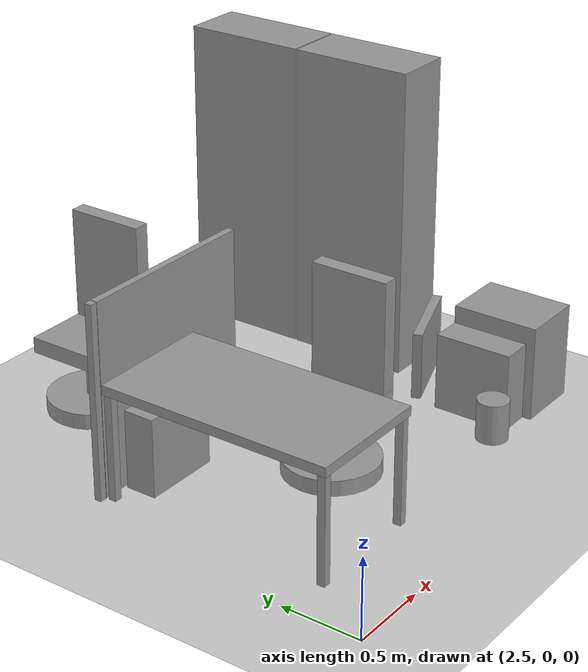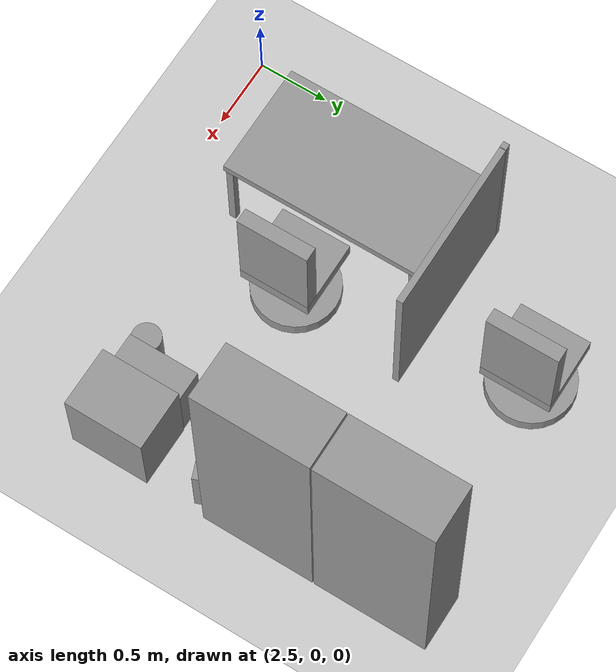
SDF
<sdf version="1.6">
 <world name="default">
  <model name="ground_plane">
   <static>1</static>
   <link name="link">
    <collision name="collision">
     <geometry><plane><normal>0 0 1</normal><size>100 100</size></plane></geometry>
     <surface><friction><ode><mu>100</mu><mu2>50</mu2></ode></friction></surface>
    </collision>
    <visual name="visual">
     <cast_shadows>0</cast_shadows>
     <geometry><plane><normal>0 0 1</normal><size>100 100</size></plane></geometry>
     <material>
      <script><uri>file://media/materials/scripts/gazebo.material</uri><name>Gazebo/Grey</name></script>
     </material>
    </visual>
   </link>
  </model>
  <model name="L8401_cabinet_1_clone">
   <link name="link">
    <inertial>
     <mass>1</mass>
     <inertia>
      <ixx>0.166667</ixx>
      <ixy>0</ixy>
      <ixz>0</ixz>
      <iyy>0.166667</iyy>
      <iyz>0</iyz>
      <izz>0.166667</izz>
     </inertia>
    </inertial>
    <visual name="visual">
     <geometry><box><size>0.39 0.8 2</size></box></geometry>
     <material>
      <script><name>Gazebo/Grey</name><uri>file://media/materials/scripts/gazebo.material</uri></script>
      <ambient>0.3 0.3 0.3 1</ambient>
      <diffuse>0.7 0.7 0.7 1</diffuse>
      <specular>0.01 0.01 0.01 1</specular>
      <emissive>0 0 0 1</emissive>
      <shader type="vertex"><normal_map>__default__</normal_map></shader>
     </material>
    </visual>
    <collision name="collision">
     <geometry><box><size>0.39 0.8 2</size></box></geometry>
     <surface>
      <friction>
       <ode><mu>1</mu><mu2>1</mu2><fdir1>0 0 0</fdir1><slip1>0</slip1><slip2>0</slip2></ode>
       <torsional>
        <coefficient>1</coefficient>
        <patch_radius>0</patch_radius>
        <surface_radius>0</surface_radius>
        <use_patch_radius>1</use_patch_radius>
        <ode><slip>0</slip></ode>
       </torsional>
      </friction>
      <bounce><restitution_coefficient>0</restitution_coefficient><threshold>1e+06</threshold></bounce>
      <contact>
       <collide_without_contact>0</collide_without_contact>
       <collide_without_contact_bitmask>1</collide_without_contact_bitmask>
       <collide_bitmask>1</collide_bitmask>
       <ode>
        <soft_cfm>0</soft_cfm>
        <soft_erp>0.2</soft_erp>
        <kp>1e+13</kp>
        <kd>1</kd>
        <max_vel>0.01</max_vel>
        <min_depth>0</min_depth>
       </ode>
       <bullet>
        <split_impulse>1</split_impulse>
        <split_impulse_penetration_threshold>-0.01</split_impulse_penetration_threshold>
        <soft_cfm>0</soft_cfm>
        <soft_erp>0.2</soft_erp>
        <kp>1e+13</kp>
        <kd>1</kd>
       </bullet>
      </contact>
     </surface>
    </collision>
   </link>
   <static>1</static>
   <pose>5.18824 2.62085 0.999999 3e-06 -0 0.00016</pose>
  </model>
  <model name="L8401_cabinet_1_clone_0">
   <link name="link">
    <inertial>
     <mass>1</mass>
     <inertia>
      <ixx>0.166667</ixx>
      <ixy>0</ixy>
      <ixz>0</ixz>
      <iyy>0.166667</iyy>
      <iyz>0</iyz>
      <izz>0.166667</izz>
     </inertia>
    </inertial>
    <visual name="visual">
     <geometry><box><size>0.39 0.8 2</size></box></geometry>
     <material>
      <script><name>Gazebo/Grey</name><uri>file://media/materials/scripts/gazebo.material</uri></script>
      <ambient>0.3 0.3 0.3 1</ambient>
      <diffuse>0.7 0.7 0.7 1</diffuse>
      <specular>0.01 0.01 0.01 1</specular>
      <emissive>0 0 0 1</emissive>
      <shader type="vertex"><normal_map>__default__</normal_map></shader>
     </material>
    </visual>
    <collision name="collision">
     <geometry><box><size>0.39 0.8 2</size></box></geometry>
     <surface>
      <friction>
       <ode><mu>1</mu><mu2>1</mu2><fdir1>0 0 0</fdir1><slip1>0</slip1><slip2>0</slip2></ode>
       <torsional>
        <coefficient>1</coefficient>
        <patch_radius>0</patch_radius>
        <surface_radius>0</surface_radius>
        <use_patch_radius>1</use_patch_radius>
        <ode><slip>0</slip></ode>
       </torsional>
      </friction>
      <bounce><restitution_coefficient>0</restitution_coefficient><threshold>1e+06</threshold></bounce>
      <contact>
       <collide_without_contact>0</collide_without_contact>
       <collide_without_contact_bitmask>1</collide_without_contact_bitmask>
       <collide_bitmask>1</collide_bitmask>
       <ode>
        <soft_cfm>0</soft_cfm>
        <soft_erp>0.2</soft_erp>
        <kp>1e+13</kp>
        <kd>1</kd>
        <max_vel>0.01</max_vel>
        <min_depth>0</min_depth>
       </ode>
       <bullet>
        <split_impulse>1</split_impulse>
        <split_impulse_penetration_threshold>-0.01</split_impulse_penetration_threshold>
        <soft_cfm>0</soft_cfm>
        <soft_erp>0.2</soft_erp>
        <kp>1e+13</kp>
        <kd>1</kd>
       </bullet>
      </contact>
     </surface>
    </collision>
   </link>
   <static>1</static>
   <pose>5.18768 1.81 0.999999 1e-06 -1e-06 9e-06</pose>
  </model>
  <model name="L8401_desk">
   <link name="link_0">
    <pose>0.358907 -0.716347 -0.07 0 -0 3.14159</pose>
    <inertial>
     <mass>0.00540124</mass>
     <inertia>
      <ixx>0.00024509</ixx>
      <ixy>0</ixy>
      <ixz>0</ixz>
      <iyy>0.00024438</iyy>
      <iyz>0</iyz>
      <izz>6.68e-06</izz>
     </inertia>
    </inertial>
    <visual name="visual">
     <geometry><box><size>0.05 0.05 0.7</size></box></geometry>
     <material>
      <lighting>1</lighting>
      <script><uri>file://media/materials/scripts/gazebo.material</uri><name>Gazebo/Grey</name></script>
      <ambient>0.3 0.3 0.3 1</ambient>
      <diffuse>0.7 0.7 0.7 1</diffuse>
      <specular>0.01 0.01 0.01 1</specular>
      <emissive>0 0 0 1</emissive>
      <shader type="vertex"><normal_map>__default__</normal_map></shader>
     </material>
    </visual>
    <collision name="collision">
     <geometry><box><size>0.05 0.05 0.7</size></box></geometry>
     <surface>
      <friction>
       <ode><mu>1</mu><mu2>1</mu2><fdir1>0 0 0</fdir1><slip1>0</slip1><slip2>0</slip2></ode>
       <torsional>
        <coefficient>1</coefficient>
        <patch_radius>0</patch_radius>
        <surface_radius>0</surface_radius>
        <use_patch_radius>1</use_patch_radius>
        <ode><slip>0</slip></ode>
       </torsional>
      </friction>
      <bounce><restitution_coefficient>0</restitution_coefficient><threshold>1e+06</threshold></bounce>
      <contact>
       <collide_without_contact>0</collide_without_contact>
       <collide_without_contact_bitmask>1</collide_without_contact_bitmask>
       <collide_bitmask>1</collide_bitmask>
       <ode>
        <soft_cfm>0</soft_cfm>
        <soft_erp>0.2</soft_erp>
        <kp>1e+13</kp>
        <kd>1</kd>
        <max_vel>0.01</max_vel>
        <min_depth>0</min_depth>
       </ode>
       <bullet>
        <split_impulse>1</split_impulse>
        <split_impulse_penetration_threshold>-0.01</split_impulse_penetration_threshold>
        <soft_cfm>0</soft_cfm>
        <soft_erp>0.2</soft_erp>
        <kp>1e+13</kp>
        <kd>1</kd>
       </bullet>
      </contact>
     </surface>
    </collision>
   </link>
   <link name="link_0_clone">
    <pose>-0.368381 -0.716242 -0.07 0 -0 3.14159</pose>
    <inertial>
     <mass>0.00540124</mass>
     <inertia>
      <ixx>0.00024509</ixx>
      <ixy>0</ixy>
      <ixz>0</ixz>
      <iyy>0.00024438</iyy>
      <iyz>0</iyz>
      <izz>6.68e-06</izz>
     </inertia>
    </inertial>
    <visual name="visual">
     <geometry><box><size>0.05 0.05 0.7</size></box></geometry>
     <material>
      <lighting>1</lighting>
      <script><uri>file://media/materials/scripts/gazebo.material</uri><name>Gazebo/Grey</name></script>
      <ambient>0.3 0.3 0.3 1</ambient>
      <diffuse>0.7 0.7 0.7 1</diffuse>
      <specular>0.01 0.01 0.01 1</specular>
      <emissive>0 0 0 1</emissive>
      <shader type="vertex"><normal_map>__default__</normal_map></shader>
     </material>
    </visual>
    <collision name="collision">
     <geometry><box><size>0.05 0.05 0.7</size></box></geometry>
     <surface>
      <friction>
       <ode><mu>1</mu><mu2>1</mu2><fdir1>0 0 0</fdir1><slip1>0</slip1><slip2>0</slip2></ode>
       <torsional>
        <coefficient>1</coefficient>
        <patch_radius>0</patch_radius>
        <surface_radius>0</surface_radius>
        <use_patch_radius>1</use_patch_radius>
        <ode><slip>0</slip></ode>
       </torsional>
      </friction>
      <bounce><restitution_coefficient>0</restitution_coefficient><threshold>1e+06</threshold></bounce>
      <contact>
       <collide_without_contact>0</collide_without_contact>
       <collide_without_contact_bitmask>1</collide_without_contact_bitmask>
       <collide_bitmask>1</collide_bitmask>
       <ode>
        <soft_cfm>0</soft_cfm>
        <soft_erp>0.2</soft_erp>
        <kp>1e+13</kp>
        <kd>1</kd>
        <max_vel>0.01</max_vel>
        <min_depth>0</min_depth>
       </ode>
       <bullet>
        <split_impulse>1</split_impulse>
        <split_impulse_penetration_threshold>-0.01</split_impulse_penetration_threshold>
        <soft_cfm>0</soft_cfm>
        <soft_erp>0.2</soft_erp>
        <kp>1e+13</kp>
        <kd>1</kd>
       </bullet>
      </contact>
     </surface>
    </collision>
   </link>
   <link name="link_0_clone_0">
    <pose>-0.368174 0.719141 -0.07 0 -0 3.14159</pose>
    <inertial>
     <mass>0.00540124</mass>
     <inertia>
      <ixx>0.00024509</ixx>
      <ixy>0</ixy>
      <ixz>0</ixz>
      <iyy>0.00024438</iyy>
      <iyz>0</iyz>
      <izz>6.68e-06</izz>
     </inertia>
    </inertial>
    <visual name="visual">
     <geometry><box><size>0.05 0.05 0.7</size></box></geometry>
     <material>
      <lighting>1</lighting>
      <script><uri>file://media/materials/scripts/gazebo.material</uri><name>Gazebo/Grey</name></script>
      <ambient>0.3 0.3 0.3 1</ambient>
      <diffuse>0.7 0.7 0.7 1</diffuse>
      <specular>0.01 0.01 0.01 1</specular>
      <emissive>0 0 0 1</emissive>
      <shader type="vertex"><normal_map>__default__</normal_map></shader>
     </material>
    </visual>
    <collision name="collision">
     <geometry><box><size>0.05 0.05 0.7</size></box></geometry>
     <surface>
      <friction>
       <ode><mu>1</mu><mu2>1</mu2><fdir1>0 0 0</fdir1><slip1>0</slip1><slip2>0</slip2></ode>
       <torsional>
        <coefficient>1</coefficient>
        <patch_radius>0</patch_radius>
        <surface_radius>0</surface_radius>
        <use_patch_radius>1</use_patch_radius>
        <ode><slip>0</slip></ode>
       </torsional>
      </friction>
      <bounce><restitution_coefficient>0</restitution_coefficient><threshold>1e+06</threshold></bounce>
      <contact>
       <collide_without_contact>0</collide_without_contact>
       <collide_without_contact_bitmask>1</collide_without_contact_bitmask>
       <collide_bitmask>1</collide_bitmask>
       <ode>
        <soft_cfm>0</soft_cfm>
        <soft_erp>0.2</soft_erp>
        <kp>1e+13</kp>
        <kd>1</kd>
        <max_vel>0.01</max_vel>
        <min_depth>0</min_depth>
       </ode>
       <bullet>
        <split_impulse>1</split_impulse>
        <split_impulse_penetration_threshold>-0.01</split_impulse_penetration_threshold>
        <soft_cfm>0</soft_cfm>
        <soft_erp>0.2</soft_erp>
        <kp>1e+13</kp>
        <kd>1</kd>
       </bullet>
      </contact>
     </surface>
    </collision>
   </link>
   <link name="link_0_clone_1">
    <pose>0.359113 0.719037 -0.07 0 -0 3.14159</pose>
    <inertial>
     <mass>0.00540124</mass>
     <inertia>
      <ixx>0.00024509</ixx>
      <ixy>0</ixy>
      <ixz>0</ixz>
      <iyy>0.00024438</iyy>
      <iyz>0</iyz>
      <izz>6.68e-06</izz>
     </inertia>
    </inertial>
    <visual name="visual">
     <geometry><box><size>0.05 0.05 0.7</size></box></geometry>
     <material>
      <lighting>1</lighting>
      <script><uri>file://media/materials/scripts/gazebo.material</uri><name>Gazebo/Grey</name></script>
      <ambient>0.3 0.3 0.3 1</ambient>
      <diffuse>0.7 0.7 0.7 1</diffuse>
      <specular>0.01 0.01 0.01 1</specular>
      <emissive>0 0 0 1</emissive>
      <shader type="vertex"><normal_map>__default__</normal_map></shader>
     </material>
    </visual>
    <collision name="collision">
     <geometry><box><size>0.05 0.05 0.7</size></box></geometry>
     <surface>
      <friction>
       <ode><mu>1</mu><mu2>1</mu2><fdir1>0 0 0</fdir1><slip1>0</slip1><slip2>0</slip2></ode>
       <torsional>
        <coefficient>1</coefficient>
        <patch_radius>0</patch_radius>
        <surface_radius>0</surface_radius>
        <use_patch_radius>1</use_patch_radius>
        <ode><slip>0</slip></ode>
       </torsional>
      </friction>
      <bounce><restitution_coefficient>0</restitution_coefficient><threshold>1e+06</threshold></bounce>
      <contact>
       <collide_without_contact>0</collide_without_contact>
       <collide_without_contact_bitmask>1</collide_without_contact_bitmask>
       <collide_bitmask>1</collide_bitmask>
       <ode>
        <soft_cfm>0</soft_cfm>
        <soft_erp>0.2</soft_erp>
        <kp>1e+13</kp>
        <kd>1</kd>
        <max_vel>0.01</max_vel>
        <min_depth>0</min_depth>
       </ode>
       <bullet>
        <split_impulse>1</split_impulse>
        <split_impulse_penetration_threshold>-0.01</split_impulse_penetration_threshold>
        <soft_cfm>0</soft_cfm>
        <soft_erp>0.2</soft_erp>
        <kp>1e+13</kp>
        <kd>1</kd>
       </bullet>
      </contact>
     </surface>
    </collision>
   </link>
   <link name="link_1">
    <pose>-6e-05 0.001672 0.28 0 -0 0</pose>
    <inertial>
     <mass>0.0467165</mass>
     <inertia>
      <ixx>0.00864379</ixx>
      <ixy>0</ixy>
      <ixz>0</ixz>
      <iyy>0.00285842</iyy>
      <iyz>0</iyz>
      <izz>0.0114918</izz>
     </inertia>
    </inertial>
    <visual name="visual">
     <geometry><box><size>0.8 1.5 0.06</size></box></geometry>
     <material>
      <lighting>1</lighting>
      <script><uri>file://media/materials/scripts/gazebo.material</uri><name>Gazebo/Grey</name></script>
      <ambient>0.3 0.3 0.3 1</ambient>
      <diffuse>0.7 0.7 0.7 1</diffuse>
      <specular>0.01 0.01 0.01 1</specular>
      <emissive>0 0 0 1</emissive>
      <shader type="vertex"><normal_map>__default__</normal_map></shader>
     </material>
    </visual>
    <collision name="collision">
     <geometry><box><size>0.8 1.5 0.06</size></box></geometry>
     <surface>
      <friction>
       <ode><mu>1</mu><mu2>1</mu2><fdir1>0 0 0</fdir1><slip1>0</slip1><slip2>0</slip2></ode>
       <torsional>
        <coefficient>1</coefficient>
        <patch_radius>0</patch_radius>
        <surface_radius>0</surface_radius>
        <use_patch_radius>1</use_patch_radius>
        <ode><slip>0</slip></ode>
       </torsional>
      </friction>
      <bounce><restitution_coefficient>0</restitution_coefficient><threshold>1e+06</threshold></bounce>
      <contact>
       <collide_without_contact>0</collide_without_contact>
       <collide_without_contact_bitmask>1</collide_without_contact_bitmask>
       <collide_bitmask>1</collide_bitmask>
       <ode>
        <soft_cfm>0</soft_cfm>
        <soft_erp>0.2</soft_erp>
        <kp>1e+13</kp>
        <kd>1</kd>
        <max_vel>0.01</max_vel>
        <min_depth>0</min_depth>
       </ode>
       <bullet>
        <split_impulse>1</split_impulse>
        <split_impulse_penetration_threshold>-0.01</split_impulse_penetration_threshold>
        <soft_cfm>0</soft_cfm>
        <soft_erp>0.2</soft_erp>
        <kp>1e+13</kp>
        <kd>1</kd>
       </bullet>
      </contact>
     </surface>
    </collision>
   </link>
   <joint name="link_1_JOINT_0" type="fixed">
    <parent>link_1</parent>
    <child>link_0</child>
    <pose>0 0 0 -0.01 -0.02 -0.01</pose>
    <physics>
     <ode><limit><cfm>0</cfm><erp>0.2</erp></limit><suspension><cfm>0</cfm><erp>0.2</erp></suspension></ode>
    </physics>
   </joint>
   <joint name="link_1_JOINT_1" type="fixed">
    <parent>link_1</parent>
    <child>link_0_clone</child>
    <physics>
     <ode><limit><cfm>0</cfm><erp>0.2</erp></limit><suspension><cfm>0</cfm><erp>0.2</erp></suspension></ode>
    </physics>
   </joint>
   <joint name="link_1_JOINT_2" type="fixed">
    <parent>link_1</parent>
    <child>link_0_clone_1</child>
    <physics>
     <ode><limit><cfm>0</cfm><erp>0.2</erp></limit><suspension><cfm>0</cfm><erp>0.2</erp></suspension></ode>
    </physics>
   </joint>
   <joint name="link_1_JOINT_3" type="fixed">
    <parent>link_1</parent>
    <child>link_0_clone_0</child>
    <physics>
     <ode><limit><cfm>0</cfm><erp>0.2</erp></limit><suspension><cfm>0</cfm><erp>0.2</erp></suspension></ode>
    </physics>
   </joint>
   <static>1</static>
   <pose>3.16035 1.15824 0.420003 3e-06 3e-06 0.001445</pose>
  </model>
  <model name="L8401_panel_A_0">
   <link name="link_0">
    <inertial>
     <mass>1</mass>
     <inertia>
      <ixx>0.166667</ixx>
      <ixy>0</ixy>
      <ixz>0</ixz>
      <iyy>0.166667</iyy>
      <iyz>0</iyz>
      <izz>0.166667</izz>
     </inertia>
    </inertial>
    <visual name="visual">
     <geometry><box><size>1.2 0.045 1.23</size></box></geometry>
     <material>
      <lighting>1</lighting>
      <script><uri>file://media/materials/scripts/gazebo.material</uri><name>Gazebo/Grey</name></script>
      <ambient>0.3 0.3 0.3 1</ambient>
      <diffuse>0.7 0.7 0.7 1</diffuse>
      <specular>0.01 0.01 0.01 1</specular>
      <emissive>0 0 0 1</emissive>
      <shader type="vertex"><normal_map>__default__</normal_map></shader>
     </material>
    </visual>
    <collision name="collision">
     <geometry><box><size>1.2 0.045 1.23</size></box></geometry>
     <surface>
      <friction>
       <ode><mu>1</mu><mu2>1</mu2><fdir1>0 0 0</fdir1><slip1>0</slip1><slip2>0</slip2></ode>
       <torsional>
        <coefficient>1</coefficient>
        <patch_radius>0</patch_radius>
        <surface_radius>0</surface_radius>
        <use_patch_radius>1</use_patch_radius>
        <ode><slip>0</slip></ode>
       </torsional>
      </friction>
      <bounce><restitution_coefficient>0</restitution_coefficient><threshold>1e+06</threshold></bounce>
      <contact>
       <collide_without_contact>0</collide_without_contact>
       <collide_without_contact_bitmask>1</collide_without_contact_bitmask>
       <collide_bitmask>1</collide_bitmask>
       <ode>
        <soft_cfm>0</soft_cfm>
        <soft_erp>0.2</soft_erp>
        <kp>1e+13</kp>
        <kd>1</kd>
        <max_vel>0.01</max_vel>
        <min_depth>0</min_depth>
       </ode>
       <bullet>
        <split_impulse>1</split_impulse>
        <split_impulse_penetration_threshold>-0.01</split_impulse_penetration_threshold>
        <soft_cfm>0</soft_cfm>
        <soft_erp>0.2</soft_erp>
        <kp>1e+13</kp>
        <kd>1</kd>
       </bullet>
      </contact>
     </surface>
    </collision>
   </link>
   <static>1</static>
   <pose>3.36548 1.94169 0.615 7.6e-05 1.4e-05 -0.000888</pose>
  </model>
  <model name="L8401_panel_C_0_clone">
   <link name="link_0">
    <inertial>
     <mass>1</mass>
     <inertia>
      <ixx>0.166667</ixx>
      <ixy>0</ixy>
      <ixz>0</ixz>
      <iyy>0.166667</iyy>
      <iyz>0</iyz>
      <izz>0.166667</izz>
     </inertia>
    </inertial>
    <visual name="visual">
     <geometry><box><size>0.045 0.045 1.23</size></box></geometry>
     <material>
      <lighting>1</lighting>
      <script><uri>file://media/materials/scripts/gazebo.material</uri><name>Gazebo/Grey</name></script>
      <ambient>0.3 0.3 0.3 1</ambient>
      <diffuse>0.7 0.7 0.7 1</diffuse>
      <specular>0.01 0.01 0.01 1</specular>
      <emissive>0 0 0 1</emissive>
      <shader type="vertex"><normal_map>__default__</normal_map></shader>
     </material>
    </visual>
    <collision name="collision">
     <geometry><box><size>0.045 0.045 1.23</size></box></geometry>
     <surface>
      <friction>
       <ode><mu>1</mu><mu2>1</mu2><fdir1>0 0 0</fdir1><slip1>0</slip1><slip2>0</slip2></ode>
       <torsional>
        <coefficient>1</coefficient>
        <patch_radius>0</patch_radius>
        <surface_radius>0</surface_radius>
        <use_patch_radius>1</use_patch_radius>
        <ode><slip>0</slip></ode>
       </torsional>
      </friction>
      <bounce><restitution_coefficient>0</restitution_coefficient><threshold>1e+06</threshold></bounce>
      <contact>
       <collide_without_contact>0</collide_without_contact>
       <collide_without_contact_bitmask>1</collide_without_contact_bitmask>
       <collide_bitmask>1</collide_bitmask>
       <ode>
        <soft_cfm>0</soft_cfm>
        <soft_erp>0.2</soft_erp>
        <kp>1e+13</kp>
        <kd>1</kd>
        <max_vel>0.01</max_vel>
        <min_depth>0</min_depth>
       </ode>
       <bullet>
        <split_impulse>1</split_impulse>
        <split_impulse_penetration_threshold>-0.01</split_impulse_penetration_threshold>
        <soft_cfm>0</soft_cfm>
        <soft_erp>0.2</soft_erp>
        <kp>1e+13</kp>
        <kd>1</kd>
       </bullet>
      </contact>
     </surface>
    </collision>
   </link>
   <static>1</static>
   <pose>2.73904 1.94128 0.615 2e-06 -1e-06 3.8e-05</pose>
  </model>
  <model name="L8401_computer">
   <link name="link">
    <inertial>
     <mass>1</mass>
     <inertia>
      <ixx>0.166667</ixx>
      <ixy>0</ixy>
      <ixz>0</ixz>
      <iyy>0.166667</iyy>
      <iyz>0</iyz>
      <izz>0.166667</izz>
     </inertia>
    </inertial>
    <visual name="visual">
     <geometry><box><size>0.5 0.2 0.5</size></box></geometry>
     <material>
      <script><name>Gazebo/Grey</name><uri>file://media/materials/scripts/gazebo.material</uri></script>
      <ambient>0.3 0.3 0.3 1</ambient>
      <diffuse>0.7 0.7 0.7 1</diffuse>
      <specular>0.01 0.01 0.01 1</specular>
      <emissive>0 0 0 1</emissive>
      <shader type="vertex"><normal_map>__default__</normal_map></shader>
     </material>
    </visual>
    <collision name="collision">
     <geometry><box><size>0.5 0.2 0.5</size></box></geometry>
     <surface>
      <friction>
       <ode><mu>1</mu><mu2>1</mu2><fdir1>0 0 0</fdir1><slip1>0</slip1><slip2>0</slip2></ode>
       <torsional>
        <coefficient>1</coefficient>
        <patch_radius>0</patch_radius>
        <surface_radius>0</surface_radius>
        <use_patch_radius>1</use_patch_radius>
        <ode><slip>0</slip></ode>
       </torsional>
      </friction>
      <bounce><restitution_coefficient>0</restitution_coefficient><threshold>1e+06</threshold></bounce>
      <contact>
       <collide_without_contact>0</collide_without_contact>
       <collide_without_contact_bitmask>1</collide_without_contact_bitmask>
       <collide_bitmask>1</collide_bitmask>
       <ode>
        <soft_cfm>0</soft_cfm>
        <soft_erp>0.2</soft_erp>
        <kp>1e+13</kp>
        <kd>1</kd>
        <max_vel>0.01</max_vel>
        <min_depth>0</min_depth>
       </ode>
       <bullet>
        <split_impulse>1</split_impulse>
        <split_impulse_penetration_threshold>-0.01</split_impulse_penetration_threshold>
        <soft_cfm>0</soft_cfm>
        <soft_erp>0.2</soft_erp>
        <kp>1e+13</kp>
        <kd>1</kd>
       </bullet>
      </contact>
     </surface>
    </collision>
   </link>
   <static>1</static>
   <pose>3.17489 1.80029 0.25 2e-06 -0 -6.2e-05</pose>
  </model>
  <model name="L8401_drawer_A_clone_0">
   <link name="link">
    <inertial>
     <mass>1</mass>
     <inertia>
      <ixx>0.166667</ixx>
      <ixy>0</ixy>
      <ixz>0</ixz>
      <iyy>0.166667</iyy>
      <iyz>0</iyz>
      <izz>0.166667</izz>
     </inertia>
    </inertial>
    <visual name="visual">
     <geometry><box><size>0.56 0.42 0.61</size></box></geometry>
     <material>
      <script><name>Gazebo/Grey</name><uri>file://media/materials/scripts/gazebo.material</uri></script>
      <ambient>0.3 0.3 0.3 1</ambient>
      <diffuse>0.7 0.7 0.7 1</diffuse>
      <specular>0.01 0.01 0.01 1</specular>
      <emissive>0 0 0 1</emissive>
      <shader type="vertex"><normal_map>__default__</normal_map></shader>
     </material>
    </visual>
    <collision name="collision">
     <geometry><box><size>0.56 0.42 0.61</size></box></geometry>
     <surface>
      <friction>
       <ode><mu>1</mu><mu2>1</mu2><fdir1>0 0 0</fdir1><slip1>0</slip1><slip2>0</slip2></ode>
       <torsional>
        <coefficient>1</coefficient>
        <patch_radius>0</patch_radius>
        <surface_radius>0</surface_radius>
        <use_patch_radius>1</use_patch_radius>
        <ode><slip>0</slip></ode>
       </torsional>
      </friction>
      <bounce><restitution_coefficient>0</restitution_coefficient><threshold>1e+06</threshold></bounce>
      <contact>
       <collide_without_contact>0</collide_without_contact>
       <collide_without_contact_bitmask>1</collide_without_contact_bitmask>
       <collide_bitmask>1</collide_bitmask>
       <ode>
        <soft_cfm>0</soft_cfm>
        <soft_erp>0.2</soft_erp>
        <kp>1e+13</kp>
        <kd>1</kd>
        <max_vel>0.01</max_vel>
        <min_depth>0</min_depth>
       </ode>
       <bullet>
        <split_impulse>1</split_impulse>
        <split_impulse_penetration_threshold>-0.01</split_impulse_penetration_threshold>
        <soft_cfm>0</soft_cfm>
        <soft_erp>0.2</soft_erp>
        <kp>1e+13</kp>
        <kd>1</kd>
       </bullet>
      </contact>
     </surface>
    </collision>
   </link>
   <static>1</static>
   <pose>5.16961 0.708729 0.305 0 -0 1.57</pose>
  </model>
  <model name="L8401_trash_bin">
   <link name="link">
    <inertial>
     <mass>1</mass>
     <inertia><ixx>0.145833</ixx><ixy>0</ixy><ixz>0</ixz><iyy>0.145833</iyy><iyz>0</iyz><izz>0.125</izz></inertia>
    </inertial>
    <visual name="visual">
     <geometry><cylinder><radius>0.1</radius><length>0.26</length></cylinder></geometry>
     <material>
      <script><name>Gazebo/Grey</name><uri>file://media/materials/scripts/gazebo.material</uri></script>
      <ambient>0.3 0.3 0.3 1</ambient>
      <diffuse>0.7 0.7 0.7 1</diffuse>
      <specular>0.01 0.01 0.01 1</specular>
      <emissive>0 0 0 1</emissive>
      <shader type="vertex"><normal_map>__default__</normal_map></shader>
     </material>
    </visual>
    <collision name="collision">
     <geometry><cylinder><radius>0.1</radius><length>0.26</length></cylinder></geometry>
     <surface>
      <friction>
       <ode><mu>1</mu><mu2>1</mu2><fdir1>0 0 0</fdir1><slip1>0</slip1><slip2>0</slip2></ode>
       <torsional>
        <coefficient>1</coefficient>
        <patch_radius>0</patch_radius>
        <surface_radius>0</surface_radius>
        <use_patch_radius>1</use_patch_radius>
        <ode><slip>0</slip></ode>
       </torsional>
      </friction>
      <bounce><restitution_coefficient>0</restitution_coefficient><threshold>1e+06</threshold></bounce>
      <contact>
       <collide_without_contact>0</collide_without_contact>
       <collide_without_contact_bitmask>1</collide_without_contact_bitmask>
       <collide_bitmask>1</collide_bitmask>
       <ode>
        <soft_cfm>0</soft_cfm>
        <soft_erp>0.2</soft_erp>
        <kp>1e+13</kp>
        <kd>1</kd>
        <max_vel>0.01</max_vel>
        <min_depth>0</min_depth>
       </ode>
       <bullet>
        <split_impulse>1</split_impulse>
        <split_impulse_penetration_threshold>-0.01</split_impulse_penetration_threshold>
        <soft_cfm>0</soft_cfm>
        <soft_erp>0.2</soft_erp>
        <kp>1e+13</kp>
        <kd>1</kd>
       </bullet>
      </contact>
     </surface>
    </collision>
   </link>
   <static>1</static>
   <pose>4.63683 0.511242 0.129999 0 -0 0</pose>
  </model>
  <model name="L8401_computer_clone_2">
   <link name="link">
    <inertial>
     <mass>1</mass>
     <inertia>
      <ixx>0.166667</ixx>
      <ixy>0</ixy>
      <ixz>0</ixz>
      <iyy>0.166667</iyy>
      <iyz>0</iyz>
      <izz>0.166667</izz>
     </inertia>
    </inertial>
    <visual name="visual">
     <geometry><box><size>0.5 0.2 0.5</size></box></geometry>
     <material>
      <script><name>Gazebo/Grey</name><uri>file://media/materials/scripts/gazebo.material</uri></script>
      <ambient>0.3 0.3 0.3 1</ambient>
      <diffuse>0.7 0.7 0.7 1</diffuse>
      <specular>0.01 0.01 0.01 1</specular>
      <emissive>0 0 0 1</emissive>
      <shader type="vertex"><normal_map>__default__</normal_map></shader>
     </material>
    </visual>
    <collision name="collision">
     <geometry><box><size>0.5 0.2 0.5</size></box></geometry>
     <surface>
      <friction>
       <ode><mu>1</mu><mu2>1</mu2><fdir1>0 0 0</fdir1><slip1>0</slip1><slip2>0</slip2></ode>
       <torsional>
        <coefficient>1</coefficient>
        <patch_radius>0</patch_radius>
        <surface_radius>0</surface_radius>
        <use_patch_radius>1</use_patch_radius>
        <ode><slip>0</slip></ode>
       </torsional>
      </friction>
      <bounce><restitution_coefficient>0</restitution_coefficient><threshold>1e+06</threshold></bounce>
      <contact>
       <collide_without_contact>0</collide_without_contact>
       <collide_without_contact_bitmask>1</collide_without_contact_bitmask>
       <collide_bitmask>1</collide_bitmask>
       <ode>
        <soft_cfm>0</soft_cfm>
        <soft_erp>0.2</soft_erp>
        <kp>1e+13</kp>
        <kd>1</kd>
        <max_vel>0.01</max_vel>
        <min_depth>0</min_depth>
       </ode>
       <bullet>
        <split_impulse>1</split_impulse>
        <split_impulse_penetration_threshold>-0.01</split_impulse_penetration_threshold>
        <soft_cfm>0</soft_cfm>
        <soft_erp>0.2</soft_erp>
        <kp>1e+13</kp>
        <kd>1</kd>
       </bullet>
      </contact>
     </surface>
    </collision>
   </link>
   <static>1</static>
   <pose>4.85127 0.733814 0.250001 -1e-06 2e-06 1.56984</pose>
  </model>
  <model name="L8401_monitor">
   <link name="link">
    <inertial>
     <mass>1</mass>
     <inertia>
      <ixx>0.166667</ixx>
      <ixy>0</ixy>
      <ixz>0</ixz>
      <iyy>0.166667</iyy>
      <iyz>0</iyz>
      <izz>0.166667</izz>
     </inertia>
    </inertial>
    <visual name="visual">
     <geometry><box><size>0.58 0.06 0.44</size></box></geometry>
     <material>
      <script><name>Gazebo/Grey</name><uri>file://media/materials/scripts/gazebo.material</uri></script>
      <ambient>0.3 0.3 0.3 1</ambient>
      <diffuse>0.7 0.7 0.7 1</diffuse>
      <specular>0.01 0.01 0.01 1</specular>
      <emissive>0 0 0 1</emissive>
      <shader type="vertex"><normal_map>__default__</normal_map></shader>
     </material>
    </visual>
    <collision name="collision">
     <geometry><box><size>0.58 0.06 0.44</size></box></geometry>
     <surface>
      <friction>
       <ode><mu>1</mu><mu2>1</mu2><fdir1>0 0 0</fdir1><slip1>0</slip1><slip2>0</slip2></ode>
       <torsional>
        <coefficient>1</coefficient>
        <patch_radius>0</patch_radius>
        <surface_radius>0</surface_radius>
        <use_patch_radius>1</use_patch_radius>
        <ode><slip>0</slip></ode>
       </torsional>
      </friction>
      <bounce><restitution_coefficient>0</restitution_coefficient><threshold>1e+06</threshold></bounce>
      <contact>
       <collide_without_contact>0</collide_without_contact>
       <collide_without_contact_bitmask>1</collide_without_contact_bitmask>
       <collide_bitmask>1</collide_bitmask>
       <ode>
        <soft_cfm>0</soft_cfm>
        <soft_erp>0.2</soft_erp>
        <kp>1e+13</kp>
        <kd>1</kd>
        <max_vel>0.01</max_vel>
        <min_depth>0</min_depth>
       </ode>
       <bullet>
        <split_impulse>1</split_impulse>
        <split_impulse_penetration_threshold>-0.01</split_impulse_penetration_threshold>
        <soft_cfm>0</soft_cfm>
        <soft_erp>0.2</soft_erp>
        <kp>1e+13</kp>
        <kd>1</kd>
       </bullet>
      </contact>
     </surface>
    </collision>
   </link>
   <static>1</static>
   <pose>5.05091 1.24042 0.219991 2e-06 1e-06 0.353873</pose>
  </model>
  <model name="L8401_chair_clone_clone">
   <link name="link">
    <pose>0 -0 0.25 0 -0 0</pose>
    <inertial>
     <mass>1</mass>
     <inertia><ixx>0.145833</ixx><ixy>0</ixy><ixz>0</ixz><iyy>0.145833</iyy><iyz>0</iyz><izz>0.125</izz></inertia>
    </inertial>
    <visual name="visual">
     <geometry><cylinder><radius>0.05</radius><length>0.3</length></cylinder></geometry>
     <material>
      <script><name>Gazebo/Grey</name><uri>file://media/materials/scripts/gazebo.material</uri></script>
      <ambient>0.3 0.3 0.3 1</ambient>
      <diffuse>0.7 0.7 0.7 1</diffuse>
      <specular>0.01 0.01 0.01 1</specular>
      <emissive>0 0 0 1</emissive>
      <shader type="vertex"><normal_map>__default__</normal_map></shader>
     </material>
    </visual>
    <collision name="collision">
     <geometry><cylinder><radius>0.05</radius><length>0.3</length></cylinder></geometry>
     <surface>
      <friction>
       <ode><mu>1</mu><mu2>1</mu2><fdir1>0 0 0</fdir1><slip1>0</slip1><slip2>0</slip2></ode>
       <torsional>
        <coefficient>1</coefficient>
        <patch_radius>0</patch_radius>
        <surface_radius>0</surface_radius>
        <use_patch_radius>1</use_patch_radius>
        <ode><slip>0</slip></ode>
       </torsional>
      </friction>
      <bounce><restitution_coefficient>0</restitution_coefficient><threshold>1e+06</threshold></bounce>
      <contact>
       <collide_without_contact>0</collide_without_contact>
       <collide_without_contact_bitmask>1</collide_without_contact_bitmask>
       <collide_bitmask>1</collide_bitmask>
       <ode>
        <soft_cfm>0</soft_cfm>
        <soft_erp>0.2</soft_erp>
        <kp>1e+13</kp>
        <kd>1</kd>
        <max_vel>0.01</max_vel>
        <min_depth>0</min_depth>
       </ode>
       <bullet>
        <split_impulse>1</split_impulse>
        <split_impulse_penetration_threshold>-0.01</split_impulse_penetration_threshold>
        <soft_cfm>0</soft_cfm>
        <soft_erp>0.2</soft_erp>
        <kp>1e+13</kp>
        <kd>1</kd>
       </bullet>
      </contact>
     </surface>
    </collision>
   </link>
   <link name="link_0">
    <pose>0 -0 0.45 0 -0 0</pose>
    <inertial>
     <mass>1</mass>
     <inertia>
      <ixx>0.166667</ixx>
      <ixy>0</ixy>
      <ixz>0</ixz>
      <iyy>0.166667</iyy>
      <iyz>0</iyz>
      <izz>0.166667</izz>
     </inertia>
    </inertial>
    <visual name="visual">
     <geometry><box><size>0.5 0.5 0.1</size></box></geometry>
     <material>
      <lighting>1</lighting>
      <script><uri>file://media/materials/scripts/gazebo.material</uri><name>Gazebo/Grey</name></script>
      <ambient>0.3 0.3 0.3 1</ambient>
      <diffuse>0.7 0.7 0.7 1</diffuse>
      <specular>0.01 0.01 0.01 1</specular>
      <emissive>0 0 0 1</emissive>
      <shader type="vertex"><normal_map>__default__</normal_map></shader>
     </material>
    </visual>
    <collision name="collision">
     <geometry><box><size>0.5 0.5 0.1</size></box></geometry>
     <surface>
      <friction>
       <ode><mu>1</mu><mu2>1</mu2><fdir1>0 0 0</fdir1><slip1>0</slip1><slip2>0</slip2></ode>
       <torsional>
        <coefficient>1</coefficient>
        <patch_radius>0</patch_radius>
        <surface_radius>0</surface_radius>
        <use_patch_radius>1</use_patch_radius>
        <ode><slip>0</slip></ode>
       </torsional>
      </friction>
      <bounce><restitution_coefficient>0</restitution_coefficient><threshold>1e+06</threshold></bounce>
      <contact>
       <collide_without_contact>0</collide_without_contact>
       <collide_without_contact_bitmask>1</collide_without_contact_bitmask>
       <collide_bitmask>1</collide_bitmask>
       <ode>
        <soft_cfm>0</soft_cfm>
        <soft_erp>0.2</soft_erp>
        <kp>1e+13</kp>
        <kd>1</kd>
        <max_vel>0.01</max_vel>
        <min_depth>0</min_depth>
       </ode>
       <bullet>
        <split_impulse>1</split_impulse>
        <split_impulse_penetration_threshold>-0.01</split_impulse_penetration_threshold>
        <soft_cfm>0</soft_cfm>
        <soft_erp>0.2</soft_erp>
        <kp>1e+13</kp>
        <kd>1</kd>
       </bullet>
      </contact>
     </surface>
    </collision>
   </link>
   <link name="link_1">
    <pose>0 -0 0.05 0 -0 0</pose>
    <inertial>
     <mass>1</mass>
     <inertia><ixx>0.145833</ixx><ixy>0</ixy><ixz>0</ixz><iyy>0.145833</iyy><iyz>0</iyz><izz>0.125</izz></inertia>
    </inertial>
    <visual name="visual">
     <geometry><cylinder><radius>0.3</radius><length>0.1</length></cylinder></geometry>
     <material>
      <lighting>1</lighting>
      <script><uri>file://media/materials/scripts/gazebo.material</uri><name>Gazebo/Grey</name></script>
      <ambient>0.3 0.3 0.3 1</ambient>
      <diffuse>0.7 0.7 0.7 1</diffuse>
      <specular>0.01 0.01 0.01 1</specular>
      <emissive>0 0 0 1</emissive>
      <shader type="vertex"><normal_map>__default__</normal_map></shader>
     </material>
    </visual>
    <collision name="collision">
     <geometry><cylinder><radius>0.3</radius><length>0.1</length></cylinder></geometry>
     <surface>
      <friction>
       <ode><mu>1</mu><mu2>1</mu2><fdir1>0 0 0</fdir1><slip1>0</slip1><slip2>0</slip2></ode>
       <torsional>
        <coefficient>1</coefficient>
        <patch_radius>0</patch_radius>
        <surface_radius>0</surface_radius>
        <use_patch_radius>1</use_patch_radius>
        <ode><slip>0</slip></ode>
       </torsional>
      </friction>
      <bounce><restitution_coefficient>0</restitution_coefficient><threshold>1e+06</threshold></bounce>
      <contact>
       <collide_without_contact>0</collide_without_contact>
       <collide_without_contact_bitmask>1</collide_without_contact_bitmask>
       <collide_bitmask>1</collide_bitmask>
       <ode>
        <soft_cfm>0</soft_cfm>
        <soft_erp>0.2</soft_erp>
        <kp>1e+13</kp>
        <kd>1</kd>
        <max_vel>0.01</max_vel>
        <min_depth>0</min_depth>
       </ode>
       <bullet>
        <split_impulse>1</split_impulse>
        <split_impulse_penetration_threshold>-0.01</split_impulse_penetration_threshold>
        <soft_cfm>0</soft_cfm>
        <soft_erp>0.2</soft_erp>
        <kp>1e+13</kp>
        <kd>1</kd>
       </bullet>
      </contact>
     </surface>
    </collision>
   </link>
   <link name="link_2">
    <pose>-0.2 0 0.85 0 -0 0</pose>
    <inertial>
     <mass>1</mass>
     <inertia>
      <ixx>0.166667</ixx>
      <ixy>0</ixy>
      <ixz>0</ixz>
      <iyy>0.166667</iyy>
      <iyz>0</iyz>
      <izz>0.166667</izz>
     </inertia>
    </inertial>
    <visual name="visual">
     <geometry><box><size>0.1 0.5 0.7</size></box></geometry>
     <material>
      <lighting>1</lighting>
      <script><uri>file://media/materials/scripts/gazebo.material</uri><name>Gazebo/Grey</name></script>
      <ambient>0.3 0.3 0.3 1</ambient>
      <diffuse>0.7 0.7 0.7 1</diffuse>
      <specular>0.01 0.01 0.01 1</specular>
      <emissive>0 0 0 1</emissive>
      <shader type="vertex"><normal_map>__default__</normal_map></shader>
     </material>
    </visual>
    <collision name="collision">
     <geometry><box><size>0.1 0.5 0.7</size></box></geometry>
     <surface>
      <friction>
       <ode><mu>1</mu><mu2>1</mu2><fdir1>0 0 0</fdir1><slip1>0</slip1><slip2>0</slip2></ode>
       <torsional>
        <coefficient>1</coefficient>
        <patch_radius>0</patch_radius>
        <surface_radius>0</surface_radius>
        <use_patch_radius>1</use_patch_radius>
        <ode><slip>0</slip></ode>
       </torsional>
      </friction>
      <bounce><restitution_coefficient>0</restitution_coefficient><threshold>1e+06</threshold></bounce>
      <contact>
       <collide_without_contact>0</collide_without_contact>
       <collide_without_contact_bitmask>1</collide_without_contact_bitmask>
       <collide_bitmask>1</collide_bitmask>
       <ode>
        <soft_cfm>0</soft_cfm>
        <soft_erp>0.2</soft_erp>
        <kp>1e+13</kp>
        <kd>1</kd>
        <max_vel>0.01</max_vel>
        <min_depth>0</min_depth>
       </ode>
       <bullet>
        <split_impulse>1</split_impulse>
        <split_impulse_penetration_threshold>-0.01</split_impulse_penetration_threshold>
        <soft_cfm>0</soft_cfm>
        <soft_erp>0.2</soft_erp>
        <kp>1e+13</kp>
        <kd>1</kd>
       </bullet>
      </contact>
     </surface>
    </collision>
   </link>
   <joint name="link_0_JOINT_2" type="fixed">
    <parent>link_0</parent>
    <child>link_2</child>
    <physics>
     <ode><limit><cfm>0</cfm><erp>0.2</erp></limit><suspension><cfm>0</cfm><erp>0.2</erp></suspension></ode>
    </physics>
   </joint>
   <joint name="link_1_JOINT_0" type="fixed">
    <parent>link_1</parent>
    <child>link</child>
    <physics>
     <ode><limit><cfm>0</cfm><erp>0.2</erp></limit><suspension><cfm>0</cfm><erp>0.2</erp></suspension></ode>
    </physics>
   </joint>
   <joint name="link_JOINT_1" type="fixed">
    <parent>link</parent>
    <child>link_0</child>
    <physics>
     <ode><limit><cfm>0</cfm><erp>0.2</erp></limit><suspension><cfm>0</cfm><erp>0.2</erp></suspension></ode>
    </physics>
   </joint>
   <static>1</static>
   <pose>3.54052 2.68391 -1e-06 -0 -1e-06 -3.13943</pose>
  </model>
  <model name="L8401_chair_clone_clone_clone">
   <link name="link">
    <pose>0 -0 0.25 0 -0 0</pose>
    <inertial>
     <mass>1</mass>
     <inertia><ixx>0.145833</ixx><ixy>0</ixy><ixz>0</ixz><iyy>0.145833</iyy><iyz>0</iyz><izz>0.125</izz></inertia>
    </inertial>
    <visual name="visual">
     <geometry><cylinder><radius>0.05</radius><length>0.3</length></cylinder></geometry>
     <material>
      <script><name>Gazebo/Grey</name><uri>file://media/materials/scripts/gazebo.material</uri></script>
      <ambient>0.3 0.3 0.3 1</ambient>
      <diffuse>0.7 0.7 0.7 1</diffuse>
      <specular>0.01 0.01 0.01 1</specular>
      <emissive>0 0 0 1</emissive>
      <shader type="vertex"><normal_map>__default__</normal_map></shader>
     </material>
    </visual>
    <collision name="collision">
     <geometry><cylinder><radius>0.05</radius><length>0.3</length></cylinder></geometry>
     <surface>
      <friction>
       <ode><mu>1</mu><mu2>1</mu2><fdir1>0 0 0</fdir1><slip1>0</slip1><slip2>0</slip2></ode>
       <torsional>
        <coefficient>1</coefficient>
        <patch_radius>0</patch_radius>
        <surface_radius>0</surface_radius>
        <use_patch_radius>1</use_patch_radius>
        <ode><slip>0</slip></ode>
       </torsional>
      </friction>
      <bounce><restitution_coefficient>0</restitution_coefficient><threshold>1e+06</threshold></bounce>
      <contact>
       <collide_without_contact>0</collide_without_contact>
       <collide_without_contact_bitmask>1</collide_without_contact_bitmask>
       <collide_bitmask>1</collide_bitmask>
       <ode>
        <soft_cfm>0</soft_cfm>
        <soft_erp>0.2</soft_erp>
        <kp>1e+13</kp>
        <kd>1</kd>
        <max_vel>0.01</max_vel>
        <min_depth>0</min_depth>
       </ode>
       <bullet>
        <split_impulse>1</split_impulse>
        <split_impulse_penetration_threshold>-0.01</split_impulse_penetration_threshold>
        <soft_cfm>0</soft_cfm>
        <soft_erp>0.2</soft_erp>
        <kp>1e+13</kp>
        <kd>1</kd>
       </bullet>
      </contact>
     </surface>
    </collision>
   </link>
   <link name="link_0">
    <pose>0 -0 0.45 0 -0 0</pose>
    <inertial>
     <mass>1</mass>
     <inertia>
      <ixx>0.166667</ixx>
      <ixy>0</ixy>
      <ixz>0</ixz>
      <iyy>0.166667</iyy>
      <iyz>0</iyz>
      <izz>0.166667</izz>
     </inertia>
    </inertial>
    <visual name="visual">
     <geometry><box><size>0.5 0.5 0.1</size></box></geometry>
     <material>
      <lighting>1</lighting>
      <script><uri>file://media/materials/scripts/gazebo.material</uri><name>Gazebo/Grey</name></script>
      <ambient>0.3 0.3 0.3 1</ambient>
      <diffuse>0.7 0.7 0.7 1</diffuse>
      <specular>0.01 0.01 0.01 1</specular>
      <emissive>0 0 0 1</emissive>
      <shader type="vertex"><normal_map>__default__</normal_map></shader>
     </material>
    </visual>
    <collision name="collision">
     <geometry><box><size>0.5 0.5 0.1</size></box></geometry>
     <surface>
      <friction>
       <ode><mu>1</mu><mu2>1</mu2><fdir1>0 0 0</fdir1><slip1>0</slip1><slip2>0</slip2></ode>
       <torsional>
        <coefficient>1</coefficient>
        <patch_radius>0</patch_radius>
        <surface_radius>0</surface_radius>
        <use_patch_radius>1</use_patch_radius>
        <ode><slip>0</slip></ode>
       </torsional>
      </friction>
      <bounce><restitution_coefficient>0</restitution_coefficient><threshold>1e+06</threshold></bounce>
      <contact>
       <collide_without_contact>0</collide_without_contact>
       <collide_without_contact_bitmask>1</collide_without_contact_bitmask>
       <collide_bitmask>1</collide_bitmask>
       <ode>
        <soft_cfm>0</soft_cfm>
        <soft_erp>0.2</soft_erp>
        <kp>1e+13</kp>
        <kd>1</kd>
        <max_vel>0.01</max_vel>
        <min_depth>0</min_depth>
       </ode>
       <bullet>
        <split_impulse>1</split_impulse>
        <split_impulse_penetration_threshold>-0.01</split_impulse_penetration_threshold>
        <soft_cfm>0</soft_cfm>
        <soft_erp>0.2</soft_erp>
        <kp>1e+13</kp>
        <kd>1</kd>
       </bullet>
      </contact>
     </surface>
    </collision>
   </link>
   <link name="link_1">
    <pose>0 -0 0.05 0 -0 0</pose>
    <inertial>
     <mass>1</mass>
     <inertia><ixx>0.145833</ixx><ixy>0</ixy><ixz>0</ixz><iyy>0.145833</iyy><iyz>0</iyz><izz>0.125</izz></inertia>
    </inertial>
    <visual name="visual">
     <geometry><cylinder><radius>0.3</radius><length>0.1</length></cylinder></geometry>
     <material>
      <lighting>1</lighting>
      <script><uri>file://media/materials/scripts/gazebo.material</uri><name>Gazebo/Grey</name></script>
      <ambient>0.3 0.3 0.3 1</ambient>
      <diffuse>0.7 0.7 0.7 1</diffuse>
      <specular>0.01 0.01 0.01 1</specular>
      <emissive>0 0 0 1</emissive>
      <shader type="vertex"><normal_map>__default__</normal_map></shader>
     </material>
    </visual>
    <collision name="collision">
     <geometry><cylinder><radius>0.3</radius><length>0.1</length></cylinder></geometry>
     <surface>
      <friction>
       <ode><mu>1</mu><mu2>1</mu2><fdir1>0 0 0</fdir1><slip1>0</slip1><slip2>0</slip2></ode>
       <torsional>
        <coefficient>1</coefficient>
        <patch_radius>0</patch_radius>
        <surface_radius>0</surface_radius>
        <use_patch_radius>1</use_patch_radius>
        <ode><slip>0</slip></ode>
       </torsional>
      </friction>
      <bounce><restitution_coefficient>0</restitution_coefficient><threshold>1e+06</threshold></bounce>
      <contact>
       <collide_without_contact>0</collide_without_contact>
       <collide_without_contact_bitmask>1</collide_without_contact_bitmask>
       <collide_bitmask>1</collide_bitmask>
       <ode>
        <soft_cfm>0</soft_cfm>
        <soft_erp>0.2</soft_erp>
        <kp>1e+13</kp>
        <kd>1</kd>
        <max_vel>0.01</max_vel>
        <min_depth>0</min_depth>
       </ode>
       <bullet>
        <split_impulse>1</split_impulse>
        <split_impulse_penetration_threshold>-0.01</split_impulse_penetration_threshold>
        <soft_cfm>0</soft_cfm>
        <soft_erp>0.2</soft_erp>
        <kp>1e+13</kp>
        <kd>1</kd>
       </bullet>
      </contact>
     </surface>
    </collision>
   </link>
   <link name="link_2">
    <pose>-0.2 0 0.85 0 -0 0</pose>
    <inertial>
     <mass>1</mass>
     <inertia>
      <ixx>0.166667</ixx>
      <ixy>0</ixy>
      <ixz>0</ixz>
      <iyy>0.166667</iyy>
      <iyz>0</iyz>
      <izz>0.166667</izz>
     </inertia>
    </inertial>
    <visual name="visual">
     <geometry><box><size>0.1 0.5 0.7</size></box></geometry>
     <material>
      <lighting>1</lighting>
      <script><uri>file://media/materials/scripts/gazebo.material</uri><name>Gazebo/Grey</name></script>
      <ambient>0.3 0.3 0.3 1</ambient>
      <diffuse>0.7 0.7 0.7 1</diffuse>
      <specular>0.01 0.01 0.01 1</specular>
      <emissive>0 0 0 1</emissive>
      <shader type="vertex"><normal_map>__default__</normal_map></shader>
     </material>
    </visual>
    <collision name="collision">
     <geometry><box><size>0.1 0.5 0.7</size></box></geometry>
     <surface>
      <friction>
       <ode><mu>1</mu><mu2>1</mu2><fdir1>0 0 0</fdir1><slip1>0</slip1><slip2>0</slip2></ode>
       <torsional>
        <coefficient>1</coefficient>
        <patch_radius>0</patch_radius>
        <surface_radius>0</surface_radius>
        <use_patch_radius>1</use_patch_radius>
        <ode><slip>0</slip></ode>
       </torsional>
      </friction>
      <bounce><restitution_coefficient>0</restitution_coefficient><threshold>1e+06</threshold></bounce>
      <contact>
       <collide_without_contact>0</collide_without_contact>
       <collide_without_contact_bitmask>1</collide_without_contact_bitmask>
       <collide_bitmask>1</collide_bitmask>
       <ode>
        <soft_cfm>0</soft_cfm>
        <soft_erp>0.2</soft_erp>
        <kp>1e+13</kp>
        <kd>1</kd>
        <max_vel>0.01</max_vel>
        <min_depth>0</min_depth>
       </ode>
       <bullet>
        <split_impulse>1</split_impulse>
        <split_impulse_penetration_threshold>-0.01</split_impulse_penetration_threshold>
        <soft_cfm>0</soft_cfm>
        <soft_erp>0.2</soft_erp>
        <kp>1e+13</kp>
        <kd>1</kd>
       </bullet>
      </contact>
     </surface>
    </collision>
   </link>
   <joint name="link_0_JOINT_2" type="fixed">
    <parent>link_0</parent>
    <child>link_2</child>
    <physics>
     <ode><limit><cfm>0</cfm><erp>0.2</erp></limit><suspension><cfm>0</cfm><erp>0.2</erp></suspension></ode>
    </physics>
   </joint>
   <joint name="link_1_JOINT_0" type="fixed">
    <parent>link_1</parent>
    <child>link</child>
    <physics>
     <ode><limit><cfm>0</cfm><erp>0.2</erp></limit><suspension><cfm>0</cfm><erp>0.2</erp></suspension></ode>
    </physics>
   </joint>
   <joint name="link_JOINT_1" type="fixed">
    <parent>link</parent>
    <child>link_0</child>
    <physics>
     <ode><limit><cfm>0</cfm><erp>0.2</erp></limit><suspension><cfm>0</cfm><erp>0.2</erp></suspension></ode>
    </physics>
   </joint>
   <static>1</static>
   <pose>3.77134 1.07357 -1e-06 -0 -1e-06 -3.13943</pose>
  </model>
 </world>
</sdf>
